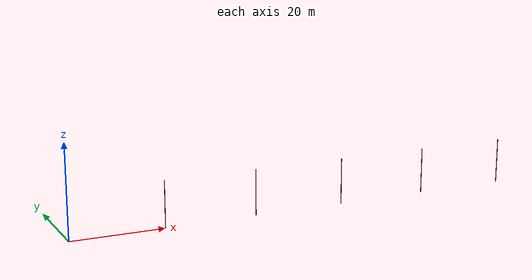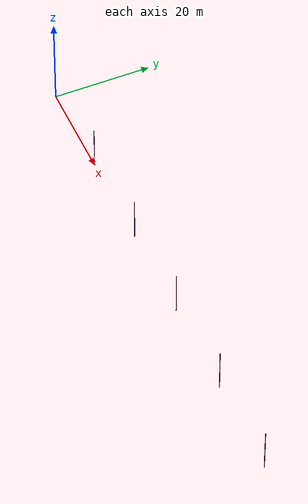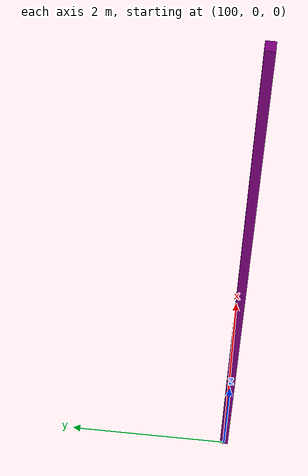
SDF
<sdf version="1.6">
 <world name="waves">
  <plugin filename="gz-sim-physics-system" name="gz::sim::systems::Physics"/>
  <plugin filename="gz-sim-sensors-system" name="gz::sim::systems::Sensors">
   <render_engine>ogre2</render_engine>
   <background_color>0.8 0.8 0.8</background_color>
  </plugin>
  <plugin filename="gz-sim-scene-broadcaster-system" name="gz::sim::systems::SceneBroadcaster"/>
  <plugin filename="gz-sim-user-commands-system" name="gz::sim::systems::UserCommands"/>
  <plugin filename="gz-sim-imu-system" name="gz::sim::systems::Imu"/>
  <plugin filename="gz-sim-magnetometer-system" name="gz::sim::systems::Magnetometer"/>
  <plugin filename="ignition-gazebo-navsat-system" name="ignition::gazebo::systems::NavSat"/>
  <spherical_coordinates>
   <surface_model>EARTH_WGS84</surface_model>
   <world_frame_orientation>ENU</world_frame_orientation>
   <latitude_deg>47.699345</latitude_deg>
   <longitude_deg>-122.218082</longitude_deg>
   <elevation>0</elevation>
   <heading_deg>0</heading_deg>
  </spherical_coordinates>
  <scene><ambient>1.0 1.0 1.0</ambient><background>0.8 0.8 0.8</background></scene>
  <light type="directional" name="sun">
   <cast_shadows>false</cast_shadows>
   <pose>0 0 10 0 0 0</pose>
   <diffuse>0.8 0.8 0.8 1</diffuse>
   <specular>0.6 0.6 0.6 1</specular>
   <direction>-0.5 0.1 -0.9</direction>
  </light>
  <model name="axes">
   <static>1</static>
   <link name="link">
    <visual name="r">
     <cast_shadows>0</cast_shadows>
     <pose>5 0 0.1 0 0 0</pose>
     <geometry><box><size>10 0.01 0.01</size></box></geometry>
     <material>
      <ambient>1 0 0 1</ambient>
      <diffuse>1 0 0 1</diffuse>
      <emissive>1 0 0 1</emissive>
      <specular>0.5 0.5 0.5 1</specular>
     </material>
    </visual>
    <visual name="g">
     <cast_shadows>0</cast_shadows>
     <pose>0 5 0.1 0 0 0</pose>
     <geometry><box><size>0.01 10 0.01</size></box></geometry>
     <material>
      <ambient>0 1 0 1</ambient>
      <diffuse>0 1 0 1</diffuse>
      <emissive>0 1 0 1</emissive>
      <specular>0.5 0.5 0.5 1</specular>
     </material>
    </visual>
    <visual name="b">
     <cast_shadows>0</cast_shadows>
     <pose>0 0 5.1 0 0 0</pose>
     <geometry><box><size>0.01 0.01 10</size></box></geometry>
     <material>
      <ambient>0 0 1 1</ambient>
      <diffuse>0 0 1 1</diffuse>
      <emissive>0 0 1 1</emissive>
      <specular>0.5 0.5 0.5 1</specular>
     </material>
    </visual>
   </link>
  </model>
  <include><uri>model://src/control_systems/waypoints/model</uri></include>
 </world>
</sdf>

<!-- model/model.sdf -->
<sdf version='1.7'>
  <model name="Waypoints">
    <static>1</static>
    <link name="Waypoint 1">
    <visual name="b">
      <cast_shadows>0</cast_shadows>
      <pose>20  0 5.1 0 0 0</pose>
      <geometry>
      <box>
        <size>0.1 0.1 10</size>
      </box>
      </geometry>
      <material>
      <ambient>0.5 0 0.5 1</ambient>
      <diffuse>0.5 0 0.5 1</diffuse>
      <emissive>0.5 0 0.5 1</emissive>
      <specular>0.6 0.6 0.6 1</specular>
      </material>
    </visual>
    </link>
    <link name="Waypoint 2">
    <visual name="b">
      <cast_shadows>0</cast_shadows>
      <pose>40  0 5.1 0 0 0</pose>
      <geometry>
      <box>
        <size>0.1 0.1 10</size>
      </box>
      </geometry>
      <material>
      <ambient>0.5 0 0.5 1</ambient>
      <diffuse>0.5 0 0.5 1</diffuse>
      <emissive>0.5 0 0.5 1</emissive>
      <specular>0.6 0.6 0.6 1</specular>
      </material>
    </visual>
    </link>
    <link name="Waypoint 3">
    <visual name="b">
      <cast_shadows>0</cast_shadows>
      <pose>60  0 5.1 0 0 0</pose>
      <geometry>
      <box>
        <size>0.1 0.1 10</size>
      </box>
      </geometry>
      <material>
      <ambient>0.5 0 0.5 1</ambient>
      <diffuse>0.5 0 0.5 1</diffuse>
      <emissive>0.5 0 0.5 1</emissive>
      <specular>0.6 0.6 0.6 1</specular>
      </material>
    </visual>
    </link>
    <link name="Waypoint 4">
    <visual name="b">
      <cast_shadows>0</cast_shadows>
      <pose>80  0 5.1 0 0 0</pose>
      <geometry>
      <box>
        <size>0.1 0.1 10</size>
      </box>
      </geometry>
      <material>
      <ambient>0.5 0 0.5 1</ambient>
      <diffuse>0.5 0 0.5 1</diffuse>
      <emissive>0.5 0 0.5 1</emissive>
      <specular>0.6 0.6 0.6 1</specular>
      </material>
    </visual>
    </link>
    <link name="Waypoint 5">
    <visual name="b">
      <cast_shadows>0</cast_shadows>
      <pose>100  0 5.1 0 0 0</pose>
      <geometry>
      <box>
        <size>0.1 0.1 10</size>
      </box>
      </geometry>
      <material>
      <ambient>0.5 0 0.5 1</ambient>
      <diffuse>0.5 0 0.5 1</diffuse>
      <emissive>0.5 0 0.5 1</emissive>
      <specular>0.6 0.6 0.6 1</specular>
      </material>
    </visual>
    </link>
  </model>
</sdf>
